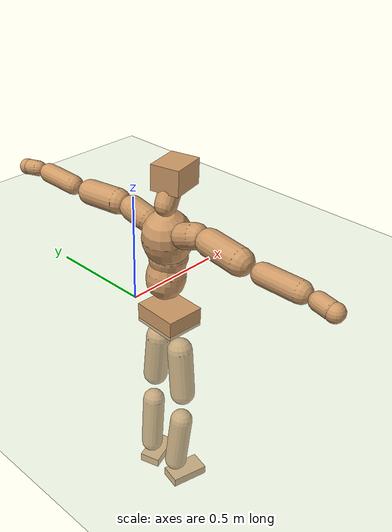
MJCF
<mujoco model="humanoid">
  <compiler coordinate="local" angle="radian"/>
  <default>
    <joint damping="0.0" armature="0.01" stiffness="0.0" limited="true"/>
    <geom conaffinity="1" condim="3" contype="7" margin="0.001" rgba="0.8 0.6 .4 1"/>
  </default>
  <asset>
    <texture type="skybox" builtin="gradient" rgb1=".4 .5 .6" rgb2="0 0 0" width="100" height="100"/>
    <texture builtin="flat" height="1278" mark="cross" markrgb="1 1 1" name="texgeom" random="0.01" rgb1="0.8 0.6 0.4" rgb2="0.8 0.6 0.4" type="cube" width="127"/>
    <texture builtin="checker" height="100" name="texplane" rgb1="0 0 0" rgb2="0.8 0.8 0.8" type="2d" width="100"/>
    <material name="MatPlane" reflectance="0.5" shininess="1" specular="1" texrepeat="60 60" texture="texplane"/>
    <material name="geom" texture="texgeom" texuniform="true"/>
  </asset>
  <worldbody>
    <light cutoff="100" diffuse="1 1 1" dir="-0 0 -1.3" directional="true" exponent="1" pos="0 0 1.3" specular=".1 .1 .1"/>
    <geom conaffinity="1" condim="3" name="floor" pos="0 0 0" rgba="0.8 0.9 0.8 1" size="100 100 .2" type="plane" material="MatPlane"/>
    <body name="Pelvis" pos="-0.0008 -0.2281 0.0335">
      <freejoint name="Pelvis"/>
      <geom type="box" contype="1" conaffinity="1" density="500" pos="-0.0096 0.0005 -0.0076" size="0.0888 0.1033 0.0447" quat="0.9997 0.0000 0.0000 -0.0261" name="Pelvis"/>
      <body name="L_Hip" pos="-0.0121 0.0557 -0.0809">
        <joint name="L_Hip_x" type="hinge" pos="0 0 0" axis="1 0 0" stiffness="800" damping="80" armature="0.02" range="-180.0000 180.0000"/>
        <joint name="L_Hip_y" type="hinge" pos="0 0 0" axis="0 1 0" stiffness="800" damping="80" armature="0.02" range="-180.0000 180.0000"/>
        <joint name="L_Hip_z" type="hinge" pos="0 0 0" axis="0 0 1" stiffness="800" damping="80" armature="0.02" range="-180.0000 180.0000"/>
        <geom type="capsule" contype="1" conaffinity="1" density="500" fromto="0.0015 0.0084 -0.0781 0.0060 0.0335 -0.3122" size="0.0571" name="L_Hip"/>
        <body name="L_Knee" pos="0.0076 0.0419 -0.3903">
          <joint name="L_Knee_x" type="hinge" pos="0 0 0" axis="1 0 0" stiffness="800" damping="80" armature="0.02" range="-180.0000 180.0000"/>
          <joint name="L_Knee_y" type="hinge" pos="0 0 0" axis="0 1 0" stiffness="800" damping="80" armature="0.02" range="-180.0000 180.0000"/>
          <joint name="L_Knee_z" type="hinge" pos="0 0 0" axis="0 0 1" stiffness="800" damping="80" armature="0.02" range="-180.0000 180.0000"/>
          <geom type="capsule" contype="1" conaffinity="1" density="500" fromto="-0.0075 -0.0031 -0.0880 -0.0298 -0.0123 -0.3519" size="0.0522" name="L_Knee"/>
          <body name="L_Ankle" pos="-0.0373 -0.0154 -0.4398">
            <joint name="L_Ankle_x" type="hinge" pos="0 0 0" axis="1 0 0" stiffness="800" damping="80" armature="0.02" range="-180.0000 180.0000"/>
            <joint name="L_Ankle_y" type="hinge" pos="0 0 0" axis="0 1 0" stiffness="800" damping="80" armature="0.02" range="-180.0000 180.0000"/>
            <joint name="L_Ankle_z" type="hinge" pos="0 0 0" axis="0 0 1" stiffness="800" damping="80" armature="0.02" range="-180.0000 180.0000"/>
            <geom type="box" contype="1" conaffinity="1" density="500" pos="0.0615 0.0193 -0.0300" size="0.087 0.0498 0.0229" quat="0.9885 0.0000 0.0000 0.1510" name="L_Ankle"/>
            <body name="L_Toe" pos="0.1231 0.0385 -0.06">
              <joint name="L_Toe_x" type="hinge" pos="0 0 0" axis="1 0 0" stiffness="500" damping="50" armature="0.02" range="-180.0000 180.0000"/>
              <joint name="L_Toe_y" type="hinge" pos="0 0 0" axis="0 1 0" stiffness="500" damping="50" armature="0.02" range="-180.0000 180.0000"/>
              <joint name="L_Toe_z" type="hinge" pos="0 0 0" axis="0 0 1" stiffness="500" damping="50" armature="0.02" range="-180.0000 180.0000"/>
              <geom type="box" contype="1" conaffinity="1" density="500" pos="0.0000 0.0000 0.0298" size="0.001 0.0024 0.0011" quat="0.9878 0.0000 0.0000 0.1560" name="L_Toe"/>
            </body>
          </body>
        </body>
      </body>
      <body name="R_Hip" pos="-0.007 -0.0575 -0.0908">
        <joint name="R_Hip_x" type="hinge" pos="0 0 0" axis="1 0 0" stiffness="800" damping="80" armature="0.02" range="-180.0000 180.0000"/>
        <joint name="R_Hip_y" type="hinge" pos="0 0 0" axis="0 1 0" stiffness="800" damping="80" armature="0.02" range="-180.0000 180.0000"/>
        <joint name="R_Hip_z" type="hinge" pos="0 0 0" axis="0 0 1" stiffness="800" damping="80" armature="0.02" range="-180.0000 180.0000"/>
        <geom type="capsule" contype="1" conaffinity="1" density="500" fromto="-0.0008 -0.0087 -0.0778 -0.0034 -0.0350 -0.3111" size="0.0567" name="R_Hip"/>
        <body name="R_Knee" pos="-0.0042 -0.0437 -0.3889">
          <joint name="R_Knee_x" type="hinge" pos="0 0 0" axis="1 0 0" stiffness="800" damping="80" armature="0.02" range="-180.0000 180.0000"/>
          <joint name="R_Knee_y" type="hinge" pos="0 0 0" axis="0 1 0" stiffness="800" damping="80" armature="0.02" range="-180.0000 180.0000"/>
          <joint name="R_Knee_z" type="hinge" pos="0 0 0" axis="0 0 1" stiffness="800" damping="80" armature="0.02" range="-180.0000 180.0000"/>
          <geom type="capsule" contype="1" conaffinity="1" density="500" fromto="-0.0066 0.0040 -0.0867 -0.0265 0.0158 -0.3470" size="0.0526" name="R_Knee"/>
          <body name="R_Ankle" pos="-0.0332 0.0198 -0.4337">
            <joint name="R_Ankle_x" type="hinge" pos="0 0 0" axis="1 0 0" stiffness="800" damping="80" armature="0.02" range="-180.0000 180.0000"/>
            <joint name="R_Ankle_y" type="hinge" pos="0 0 0" axis="0 1 0" stiffness="800" damping="80" armature="0.02" range="-180.0000 180.0000"/>
            <joint name="R_Ankle_z" type="hinge" pos="0 0 0" axis="0 0 1" stiffness="800" damping="80" armature="0.02" range="-180.0000 180.0000"/>
            <geom type="box" contype="1" conaffinity="1" density="500" pos="0.0651 -0.0158 -0.0323" size="0.0904 0.0492 0.0229" quat="0.9929 0.0000 0.0000 -0.1189" name="R_Ankle"/>
            <body name="R_Toe" pos="0.1301 -0.0316 -0.0645">
              <joint name="R_Toe_x" type="hinge" pos="0 0 0" axis="1 0 0" stiffness="500" damping="50" armature="0.02" range="-180.0000 180.0000"/>
              <joint name="R_Toe_y" type="hinge" pos="0 0 0" axis="0 1 0" stiffness="500" damping="50" armature="0.02" range="-180.0000 180.0000"/>
              <joint name="R_Toe_z" type="hinge" pos="0 0 0" axis="0 0 1" stiffness="500" damping="50" armature="0.02" range="-180.0000 180.0000"/>
              <geom type="box" contype="1" conaffinity="1" density="500" pos="0.0000 0.0000 0.0317" size="0.0011 0.0025 0.0011" quat="0.9939 0.0000 0.0000 -0.1101" name="R_Toe"/>
            </body>
          </body>
        </body>
      </body>
      <body name="Torso" pos="-0.0383 0.0048 0.1262">
        <joint name="Torso_x" type="hinge" pos="0 0 0" axis="1 0 0" stiffness="1000" damping="100" armature="0.02" range="-180.0000 180.0000"/>
        <joint name="Torso_y" type="hinge" pos="0 0 0" axis="0 1 0" stiffness="1000" damping="100" armature="0.02" range="-180.0000 180.0000"/>
        <joint name="Torso_z" type="hinge" pos="0 0 0" axis="0 0 1" stiffness="1000" damping="100" armature="0.02" range="-180.0000 180.0000"/>
        <geom type="capsule" contype="1" conaffinity="1" density="500" fromto="0.0149 0.0026 0.0767 0.0099 0.0017 0.0511" size="0.085" name="Torso"/>
        <body name="Spine" pos="0.0248 0.0043 0.1278">
          <joint name="Spine_x" type="hinge" pos="0 0 0" axis="1 0 0" stiffness="1000" damping="100" armature="0.02" range="-180.0000 180.0000"/>
          <joint name="Spine_y" type="hinge" pos="0 0 0" axis="0 1 0" stiffness="1000" damping="100" armature="0.02" range="-180.0000 180.0000"/>
          <joint name="Spine_z" type="hinge" pos="0 0 0" axis="0 0 1" stiffness="1000" damping="100" armature="0.02" range="-180.0000 180.0000"/>
          <geom type="capsule" contype="1" conaffinity="1" density="500" fromto="0.0011 -0.0018 0.0308 0.0007 -0.0012 0.0205" size="0.0834" name="Spine"/>
          <body name="Chest" pos="0.0018 -0.003 0.0513">
            <joint name="Chest_x" type="hinge" pos="0 0 0" axis="1 0 0" stiffness="1000" damping="100" armature="0.02" range="-180.0000 180.0000"/>
            <joint name="Chest_y" type="hinge" pos="0 0 0" axis="0 1 0" stiffness="1000" damping="100" armature="0.02" range="-180.0000 180.0000"/>
            <joint name="Chest_z" type="hinge" pos="0 0 0" axis="0 0 1" stiffness="1000" damping="100" armature="0.02" range="-180.0000 180.0000"/>
            <geom type="capsule" contype="1" conaffinity="1" density="500" fromto="-0.0184 -0.0052 0.0875 -0.0123 -0.0035 0.0583" size="0.1048" name="Chest"/>
            <body name="Neck" pos="-0.0419 -0.0141 0.2086">
              <joint name="Neck_x" type="hinge" pos="0 0 0" axis="1 0 0" stiffness="500" damping="50" armature="0.02" range="-180.0000 180.0000"/>
              <joint name="Neck_y" type="hinge" pos="0 0 0" axis="0 1 0" stiffness="500" damping="50" armature="0.02" range="-180.0000 180.0000"/>
              <joint name="Neck_z" type="hinge" pos="0 0 0" axis="0 0 1" stiffness="500" damping="50" armature="0.02" range="-180.0000 180.0000"/>
              <geom type="capsule" contype="1" conaffinity="1" density="500" fromto="0.0091 0.0018 0.0159 0.0366 0.0071 0.0636" size="0.046" name="Neck"/>
              <body name="Head" pos="0.0457 0.0089 0.0795">
                <joint name="Head_x" type="hinge" pos="0 0 0" axis="1 0 0" stiffness="500" damping="50" armature="0.02" range="-180.0000 180.0000"/>
                <joint name="Head_y" type="hinge" pos="0 0 0" axis="0 1 0" stiffness="500" damping="50" armature="0.02" range="-180.0000 180.0000"/>
                <joint name="Head_z" type="hinge" pos="0 0 0" axis="0 0 1" stiffness="500" damping="50" armature="0.02" range="-180.0000 180.0000"/>
                <geom type="box" contype="1" conaffinity="1" density="500" pos="0.0238 0.0055 0.0408" size="0.0774 0.0627 0.0534" quat="0.9937 0.0000 0.0000 0.1121" name="Head"/>
              </body>
            </body>
            <body name="L_Thorax" pos="-0.0243 0.0719 0.1145">
              <joint name="L_Thorax_x" type="hinge" pos="0 0 0" axis="1 0 0" stiffness="500" damping="50" armature="0.02" range="-180.0000 180.0000"/>
              <joint name="L_Thorax_y" type="hinge" pos="0 0 0" axis="0 1 0" stiffness="500" damping="50" armature="0.02" range="-180.0000 180.0000"/>
              <joint name="L_Thorax_z" type="hinge" pos="0 0 0" axis="0 0 1" stiffness="500" damping="50" armature="0.02" range="-180.0000 180.0000"/>
              <geom type="capsule" contype="1" conaffinity="1" density="500" fromto="-0.0040 0.0246 0.0086 -0.0158 0.0982 0.0343" size="0.0529" name="L_Thorax"/>
              <body name="L_Shoulder" pos="-0.0198 0.1228 0.0429">
                <joint name="L_Shoulder_x" type="hinge" pos="0 0 0" axis="1 0 0" stiffness="500" damping="50" armature="0.02" range="-720.0000 720.0000"/>
                <joint name="L_Shoulder_y" type="hinge" pos="0 0 0" axis="0 1 0" stiffness="500" damping="50" armature="0.02" range="-720.0000 720.0000"/>
                <joint name="L_Shoulder_z" type="hinge" pos="0 0 0" axis="0 0 1" stiffness="500" damping="50" armature="0.02" range="-720.0000 720.0000"/>
                <geom type="capsule" contype="1" conaffinity="1" density="500" fromto="-0.0045 0.0528 -0.0027 -0.0181 0.2113 -0.0108" size="0.0541" name="L_Shoulder"/>
                <body name="L_Elbow" pos="-0.0226 0.2641 -0.0135">
                  <joint name="L_Elbow_x" type="hinge" pos="0 0 0" axis="1 0 0" stiffness="500" damping="50" armature="0.02" range="-720.0000 720.0000"/>
                  <joint name="L_Elbow_y" type="hinge" pos="0 0 0" axis="0 1 0" stiffness="500" damping="50" armature="0.02" range="-720.0000 720.0000"/>
                  <joint name="L_Elbow_z" type="hinge" pos="0 0 0" axis="0 0 1" stiffness="500" damping="50" armature="0.02" range="-720.0000 720.0000"/>
                  <geom type="capsule" contype="1" conaffinity="1" density="500" fromto="-0.0019 0.0542 0.0022 -0.0077 0.2168 0.0088" size="0.0421" name="L_Elbow"/>
                  <body name="L_Wrist" pos="-0.0096 0.271 0.011">
                    <joint name="L_Wrist_x" type="hinge" pos="0 0 0" axis="1 0 0" stiffness="300" damping="30" armature="0.02" range="-180.0000 180.0000"/>
                    <joint name="L_Wrist_y" type="hinge" pos="0 0 0" axis="0 1 0" stiffness="300" damping="30" armature="0.02" range="-180.0000 180.0000"/>
                    <joint name="L_Wrist_z" type="hinge" pos="0 0 0" axis="0 0 1" stiffness="300" damping="30" armature="0.02" range="-180.0000 180.0000"/>
                    <geom type="capsule" contype="1" conaffinity="1" density="500" fromto="-0.0031 0.0173 -0.0020 -0.0124 0.0690 -0.0080" size="0.0339" name="L_Wrist"/>
                    <body name="L_Hand" pos="-0.0155 0.0863 -0.01">
                      <joint name="L_Hand_x" type="hinge" pos="0 0 0" axis="1 0 0" stiffness="300" damping="30" armature="0.02" range="-180.0000 180.0000"/>
                      <joint name="L_Hand_y" type="hinge" pos="0 0 0" axis="0 1 0" stiffness="300" damping="30" armature="0.02" range="-180.0000 180.0000"/>
                      <joint name="L_Hand_z" type="hinge" pos="0 0 0" axis="0 0 1" stiffness="300" damping="30" armature="0.02" range="-180.0000 180.0000"/>
                      <geom type="sphere" contype="1" conaffinity="1" density="500" size="0.0353" pos="0.0000 0.0000 0.0000" name="L_Hand"/>
                    </body>
                  </body>
                </body>
              </body>
            </body>
            <body name="R_Thorax" pos="-0.0258 -0.0838 0.1145">
              <joint name="R_Thorax_x" type="hinge" pos="0 0 0" axis="1 0 0" stiffness="500" damping="50" armature="0.02" range="-180.0000 180.0000"/>
              <joint name="R_Thorax_y" type="hinge" pos="0 0 0" axis="0 1 0" stiffness="500" damping="50" armature="0.02" range="-180.0000 180.0000"/>
              <joint name="R_Thorax_z" type="hinge" pos="0 0 0" axis="0 0 1" stiffness="500" damping="50" armature="0.02" range="-180.0000 180.0000"/>
              <geom type="capsule" contype="1" conaffinity="1" density="500" fromto="-0.0017 -0.0225 0.0090 -0.0069 -0.0899 0.0358" size="0.0531" name="R_Thorax"/>
              <body name="R_Shoulder" pos="-0.0086 -0.1124 0.0448">
                <joint name="R_Shoulder_x" type="hinge" pos="0 0 0" axis="1 0 0" stiffness="500" damping="50" armature="0.02" range="-720.0000 720.0000"/>
                <joint name="R_Shoulder_y" type="hinge" pos="0 0 0" axis="0 1 0" stiffness="500" damping="50" armature="0.02" range="-720.0000 720.0000"/>
                <joint name="R_Shoulder_z" type="hinge" pos="0 0 0" axis="0 0 1" stiffness="500" damping="50" armature="0.02" range="-720.0000 720.0000"/>
                <geom type="capsule" contype="1" conaffinity="1" density="500" fromto="-0.0055 -0.0537 -0.0023 -0.0221 -0.2149 -0.0091" size="0.0552" name="R_Shoulder"/>
                <body name="R_Elbow" pos="-0.0276 -0.2687 -0.0113">
                  <joint name="R_Elbow_x" type="hinge" pos="0 0 0" axis="1 0 0" stiffness="500" damping="50" armature="0.02" range="-720.0000 720.0000"/>
                  <joint name="R_Elbow_y" type="hinge" pos="0 0 0" axis="0 1 0" stiffness="500" damping="50" armature="0.02" range="-720.0000 720.0000"/>
                  <joint name="R_Elbow_z" type="hinge" pos="0 0 0" axis="0 0 1" stiffness="500" damping="50" armature="0.02" range="-720.0000 720.0000"/>
                  <geom type="capsule" contype="1" conaffinity="1" density="500" fromto="-0.0016 -0.0551 0.0017 -0.0066 -0.2205 0.0069" size="0.0432" name="R_Elbow"/>
                  <body name="R_Wrist" pos="-0.0082 -0.2757 0.0086">
                    <joint name="R_Wrist_x" type="hinge" pos="0 0 0" axis="1 0 0" stiffness="300" damping="30" armature="0.02" range="-180.0000 180.0000"/>
                    <joint name="R_Wrist_y" type="hinge" pos="0 0 0" axis="0 1 0" stiffness="300" damping="30" armature="0.02" range="-180.0000 180.0000"/>
                    <joint name="R_Wrist_z" type="hinge" pos="0 0 0" axis="0 0 1" stiffness="300" damping="30" armature="0.02" range="-180.0000 180.0000"/>
                    <geom type="capsule" contype="1" conaffinity="1" density="500" fromto="-0.0020 -0.0178 -0.0017 -0.0080 -0.0713 -0.0068" size="0.035" name="R_Wrist"/>
                    <body name="R_Hand" pos="-0.01 -0.0892 -0.0084">
                      <joint name="R_Hand_x" type="hinge" pos="0 0 0" axis="1 0 0" stiffness="300" damping="30" armature="0.02" range="-180.0000 180.0000"/>
                      <joint name="R_Hand_y" type="hinge" pos="0 0 0" axis="0 1 0" stiffness="300" damping="30" armature="0.02" range="-180.0000 180.0000"/>
                      <joint name="R_Hand_z" type="hinge" pos="0 0 0" axis="0 0 1" stiffness="300" damping="30" armature="0.02" range="-180.0000 180.0000"/>
                      <geom type="sphere" contype="1" conaffinity="1" density="500" size="0.0363" pos="0.0000 0.0000 0.0000" name="R_Hand"/>
                    </body>
                  </body>
                </body>
              </body>
            </body>
          </body>
        </body>
      </body>
    </body>
  </worldbody>
  <actuator>
    <motor name="L_Hip_x" joint="L_Hip_x" gear="500"/>
    <motor name="L_Hip_y" joint="L_Hip_y" gear="500"/>
    <motor name="L_Hip_z" joint="L_Hip_z" gear="500"/>
    <motor name="L_Knee_x" joint="L_Knee_x" gear="500"/>
    <motor name="L_Knee_y" joint="L_Knee_y" gear="500"/>
    <motor name="L_Knee_z" joint="L_Knee_z" gear="500"/>
    <motor name="L_Ankle_x" joint="L_Ankle_x" gear="500"/>
    <motor name="L_Ankle_y" joint="L_Ankle_y" gear="500"/>
    <motor name="L_Ankle_z" joint="L_Ankle_z" gear="500"/>
    <motor name="L_Toe_x" joint="L_Toe_x" gear="500"/>
    <motor name="L_Toe_y" joint="L_Toe_y" gear="500"/>
    <motor name="L_Toe_z" joint="L_Toe_z" gear="500"/>
    <motor name="R_Hip_x" joint="R_Hip_x" gear="500"/>
    <motor name="R_Hip_y" joint="R_Hip_y" gear="500"/>
    <motor name="R_Hip_z" joint="R_Hip_z" gear="500"/>
    <motor name="R_Knee_x" joint="R_Knee_x" gear="500"/>
    <motor name="R_Knee_y" joint="R_Knee_y" gear="500"/>
    <motor name="R_Knee_z" joint="R_Knee_z" gear="500"/>
    <motor name="R_Ankle_x" joint="R_Ankle_x" gear="500"/>
    <motor name="R_Ankle_y" joint="R_Ankle_y" gear="500"/>
    <motor name="R_Ankle_z" joint="R_Ankle_z" gear="500"/>
    <motor name="R_Toe_x" joint="R_Toe_x" gear="500"/>
    <motor name="R_Toe_y" joint="R_Toe_y" gear="500"/>
    <motor name="R_Toe_z" joint="R_Toe_z" gear="500"/>
    <motor name="Torso_x" joint="Torso_x" gear="500"/>
    <motor name="Torso_y" joint="Torso_y" gear="500"/>
    <motor name="Torso_z" joint="Torso_z" gear="500"/>
    <motor name="Spine_x" joint="Spine_x" gear="500"/>
    <motor name="Spine_y" joint="Spine_y" gear="500"/>
    <motor name="Spine_z" joint="Spine_z" gear="500"/>
    <motor name="Chest_x" joint="Chest_x" gear="500"/>
    <motor name="Chest_y" joint="Chest_y" gear="500"/>
    <motor name="Chest_z" joint="Chest_z" gear="500"/>
    <motor name="Neck_x" joint="Neck_x" gear="500"/>
    <motor name="Neck_y" joint="Neck_y" gear="500"/>
    <motor name="Neck_z" joint="Neck_z" gear="500"/>
    <motor name="Head_x" joint="Head_x" gear="500"/>
    <motor name="Head_y" joint="Head_y" gear="500"/>
    <motor name="Head_z" joint="Head_z" gear="500"/>
    <motor name="L_Thorax_x" joint="L_Thorax_x" gear="500"/>
    <motor name="L_Thorax_y" joint="L_Thorax_y" gear="500"/>
    <motor name="L_Thorax_z" joint="L_Thorax_z" gear="500"/>
    <motor name="L_Shoulder_x" joint="L_Shoulder_x" gear="500"/>
    <motor name="L_Shoulder_y" joint="L_Shoulder_y" gear="500"/>
    <motor name="L_Shoulder_z" joint="L_Shoulder_z" gear="500"/>
    <motor name="L_Elbow_x" joint="L_Elbow_x" gear="500"/>
    <motor name="L_Elbow_y" joint="L_Elbow_y" gear="500"/>
    <motor name="L_Elbow_z" joint="L_Elbow_z" gear="500"/>
    <motor name="L_Wrist_x" joint="L_Wrist_x" gear="500"/>
    <motor name="L_Wrist_y" joint="L_Wrist_y" gear="500"/>
    <motor name="L_Wrist_z" joint="L_Wrist_z" gear="500"/>
    <motor name="L_Hand_x" joint="L_Hand_x" gear="500"/>
    <motor name="L_Hand_y" joint="L_Hand_y" gear="500"/>
    <motor name="L_Hand_z" joint="L_Hand_z" gear="500"/>
    <motor name="R_Thorax_x" joint="R_Thorax_x" gear="500"/>
    <motor name="R_Thorax_y" joint="R_Thorax_y" gear="500"/>
    <motor name="R_Thorax_z" joint="R_Thorax_z" gear="500"/>
    <motor name="R_Shoulder_x" joint="R_Shoulder_x" gear="500"/>
    <motor name="R_Shoulder_y" joint="R_Shoulder_y" gear="500"/>
    <motor name="R_Shoulder_z" joint="R_Shoulder_z" gear="500"/>
    <motor name="R_Elbow_x" joint="R_Elbow_x" gear="500"/>
    <motor name="R_Elbow_y" joint="R_Elbow_y" gear="500"/>
    <motor name="R_Elbow_z" joint="R_Elbow_z" gear="500"/>
    <motor name="R_Wrist_x" joint="R_Wrist_x" gear="500"/>
    <motor name="R_Wrist_y" joint="R_Wrist_y" gear="500"/>
    <motor name="R_Wrist_z" joint="R_Wrist_z" gear="500"/>
    <motor name="R_Hand_x" joint="R_Hand_x" gear="500"/>
    <motor name="R_Hand_y" joint="R_Hand_y" gear="500"/>
    <motor name="R_Hand_z" joint="R_Hand_z" gear="500"/>
  </actuator>
  <contact>
    <exclude body1="Torso" body2="Chest"/>
    <exclude body1="Head" body2="Chest"/>
    <exclude body1="R_Knee" body2="R_Toe"/>
    <exclude body1="R_Knee" body2="L_Ankle"/>
    <exclude body1="R_Knee" body2="L_Toe"/>
    <exclude body1="L_Knee" body2="L_Toe"/>
    <exclude body1="L_Knee" body2="R_Ankle"/>
    <exclude body1="L_Knee" body2="R_Toe"/>
    <exclude body1="L_Shoulder" body2="Chest"/>
    <exclude body1="R_Shoulder" body2="Chest"/>
  </contact>
  <sensor/>
  <size njmax="700" nconmax="700"/>
</mujoco>
